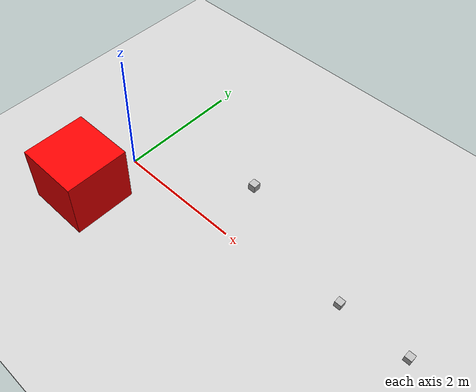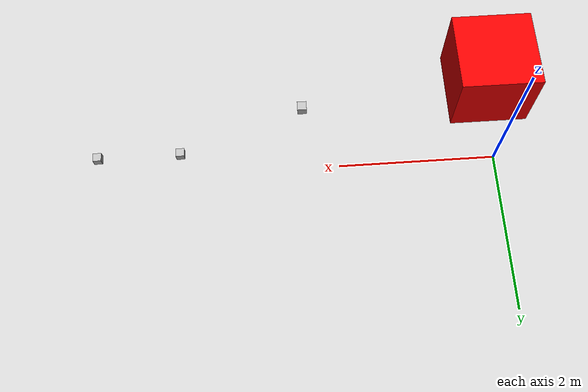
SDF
<sdf version="1.6">
 <world name="lidar_sensor">
  <physics name="1ms" type="ignored">
   <max_step_size>0.001</max_step_size>
   <real_time_factor>1.0</real_time_factor>
  </physics>
  <plugin filename="libignition-gazebo-physics-system.so" name="ignition::gazebo::systems::Physics"/>
  <plugin filename="libignition-gazebo-sensors-system.so" name="ignition::gazebo::systems::Sensors">
   <render_engine>ogre2</render_engine>
  </plugin>
  <plugin filename="libignition-gazebo-scene-broadcaster-system.so" name="ignition::gazebo::systems::SceneBroadcaster"/>
  <light type="directional" name="sun">
   <pose>0 0 10 0 0 0</pose>
   <diffuse>0.8 0.8 0.8 1</diffuse>
   <specular>0.2 0.2 0.2 1</specular>
   <attenuation>
    <range>1000</range>
    <constant>0.9</constant>
    <linear>0.01</linear>
    <quadratic>0.001</quadratic>
   </attenuation>
   <direction>-0.5 0.1 -0.9</direction>
  </light>
  <model name="ground_plane">
   <static>true</static>
   <link name="link">
    <collision name="collision"><geometry><box><size>20 20 0.1</size></box></geometry></collision>
    <visual name="visual">
     <geometry><box><size>20 20 0.1</size></box></geometry>
     <material>
      <ambient>0.8 0.8 0.8 1</ambient>
      <diffuse>0.8 0.8 0.8 1</diffuse>
      <specular>0.8 0.8 0.8 1</specular>
     </material>
    </visual>
   </link>
  </model>
  <model name="box">
   <pose>0 -1 0.5 0 0 0</pose>
   <link name="box_link">
    <inertial>
     <inertia><ixx>1</ixx><ixy>0</ixy><ixz>0</ixz><iyy>1</iyy><iyz>0</iyz><izz>1</izz></inertia>
     <mass>1.0</mass>
    </inertial>
    <collision name="box_collision"><geometry><box><size>1 1 1</size></box></geometry></collision>
    <visual name="box_visual">
     <geometry><box><size>1 1 1</size></box></geometry>
     <material><ambient>1 0 0 1</ambient><diffuse>1 0 0 1</diffuse><specular>1 0 0 1</specular></material>
    </visual>
   </link>
  </model>
  <model name="cameras_alone">
   <pose>2.5 0 1.5 0 0.0 3.14</pose>
   <link name="link">
    <pose>0.05 0.05 0.05 0 0 0</pose>
    <inertial>
     <mass>0.1</mass>
     <inertia><ixx>0.000166667</ixx><iyy>0.000166667</iyy><izz>0.000166667</izz></inertia>
    </inertial>
    <collision name="collision"><geometry><box><size>0.1 0.1 0.1</size></box></geometry></collision>
    <visual name="visual"><geometry><box><size>0.1 0.1 0.1</size></box></geometry></visual>
    <sensor name="cameras_alone" type="camera">
     <camera>
      <horizontal_fov>1.047</horizontal_fov>
      <image><width>320</width><height>240</height></image>
      <clip><near>0.1</near><far>100</far></clip>
     </camera>
     <always_on>1</always_on>
     <update_rate>30</update_rate>
     <visualize>true</visualize>
     <topic>camera_alone</topic>
    </sensor>
    <sensor name="depth_camera1" type="depth_camera">
     <update_rate>10</update_rate>
     <topic>depth_camera</topic>
     <camera>
      <horizontal_fov>1.05</horizontal_fov>
      <image><width>320</width><height>240</height><format>R_FLOAT32</format></image>
      <clip><near>0.1</near><far>10.0</far></clip>
     </camera>
    </sensor>
   </link>
   <static>true</static>
  </model>
  <model name="camera_with_lidar">
   <pose>4 0 0.5 0 0.0 3.14</pose>
   <link name="link">
    <pose>0.05 0.05 0.05 0 0 0</pose>
    <inertial>
     <mass>0.1</mass>
     <inertia><ixx>0.000166667</ixx><iyy>0.000166667</iyy><izz>0.000166667</izz></inertia>
    </inertial>
    <collision name="collision"><geometry><box><size>0.1 0.1 0.1</size></box></geometry></collision>
    <visual name="visual"><geometry><box><size>0.1 0.1 0.1</size></box></geometry></visual>
    <sensor name="camera" type="camera">
     <camera>
      <horizontal_fov>1.047</horizontal_fov>
      <image><width>320</width><height>240</height></image>
      <clip><near>0.1</near><far>100</far></clip>
     </camera>
     <always_on>1</always_on>
     <update_rate>30</update_rate>
     <visualize>true</visualize>
     <topic>camera</topic>
    </sensor>
    <sensor name="gpu_lidar" type="gpu_lidar">
     <topic>lidar</topic>
     <update_rate>10</update_rate>
     <ray>
      <scan>
       <horizontal>
        <samples>640</samples>
        <resolution>1</resolution>
        <min_angle>-1.396263</min_angle>
        <max_angle>1.396263</max_angle>
       </horizontal>
       <vertical>
        <samples>1</samples>
        <resolution>0.01</resolution>
        <min_angle>0</min_angle>
        <max_angle>0</max_angle>
       </vertical>
      </scan>
      <range><min>0.08</min><max>10.0</max><resolution>0.01</resolution></range>
     </ray>
     <alwaysOn>1</alwaysOn>
     <visualize>true</visualize>
    </sensor>
   </link>
   <static>true</static>
  </model>
  <model name="rgbd_camera">
   <pose>5 0 0.5 0 0.0 3.14</pose>
   <link name="link">
    <pose>0.05 0.05 0.05 0 0 0</pose>
    <inertial>
     <mass>0.1</mass>
     <inertia><ixx>0.000166667</ixx><iyy>0.000166667</iyy><izz>0.000166667</izz></inertia>
    </inertial>
    <collision name="collision"><geometry><box><size>0.1 0.1 0.1</size></box></geometry></collision>
    <visual name="visual"><geometry><box><size>0.1 0.1 0.1</size></box></geometry></visual>
    <sensor name="rgbd_camera" type="rgbd_camera">
     <camera>
      <horizontal_fov>1.047</horizontal_fov>
      <image><width>320</width><height>240</height></image>
      <clip><near>0.1</near><far>100</far></clip>
     </camera>
     <always_on>1</always_on>
     <update_rate>30</update_rate>
     <visualize>true</visualize>
     <topic>rgbd_camera</topic>
    </sensor>
   </link>
  </model>
 </world>
</sdf>
